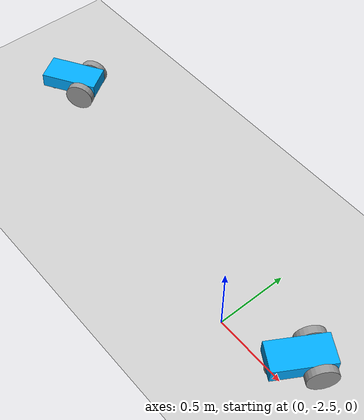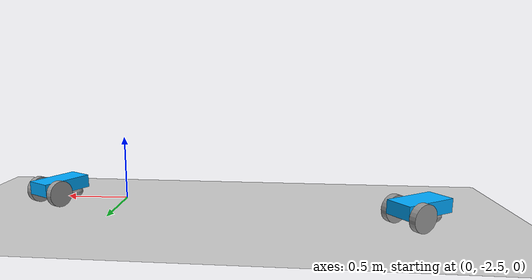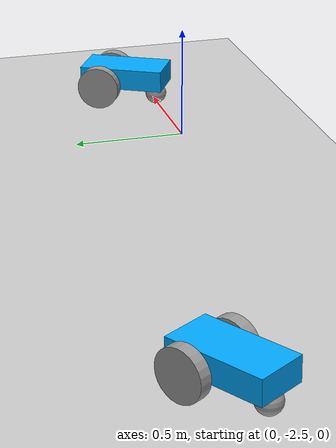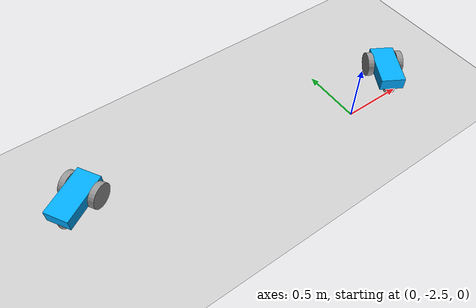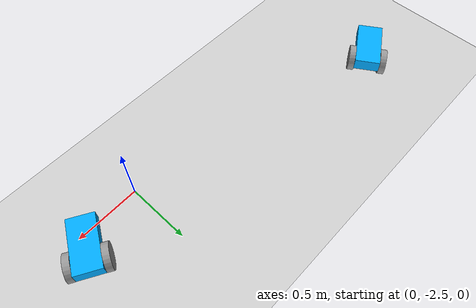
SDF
<sdf version="1.6">
 <world name="default">
  <model name="ground_plane">
   <static>1</static>
   <link name="link">
    <collision name="collision">
     <geometry><plane><normal>0 0 1</normal><size>100 100</size></plane></geometry>
     <surface><friction><ode><mu>100</mu><mu2>50</mu2></ode></friction></surface>
    </collision>
    <visual name="visual">
     <cast_shadows>0</cast_shadows>
     <geometry><plane><normal>0 0 1</normal><size>100 100</size></plane></geometry>
     <material>
      <script><uri>file://media/materials/scripts/gazebo.material</uri><name>Gazebo/Grey</name></script>
     </material>
    </visual>
   </link>
  </model>
  <model name="Robot">
   <link name="link_0">
    <inertial>
     <mass>9.4</mass>
     <inertia>
      <ixx>0.0391667</ixx>
      <ixy>0</ixy>
      <ixz>0</ixz>
      <iyy>0.133167</iyy>
      <iyz>0</iyz>
      <izz>0.156667</izz>
     </inertia>
    </inertial>
    <pose>0 0 0.05 0 -0 0</pose>
    <visual name="visual">
     <geometry><box><size>0.4 0.2 0.1</size></box></geometry>
     <material>
      <lighting>1</lighting>
      <script><uri>file://media/materials/scripts/gazebo.material</uri><name>Gazebo/Grey</name></script>
      <shader type="pixel"><normal_map>__default__</normal_map></shader>
      <ambient>0 0.667 1 1</ambient>
      <diffuse>0.7 0.7 0.7 1</diffuse>
      <specular>0.01 0.01 0.01 1</specular>
      <emissive>0 0 0 1</emissive>
     </material>
    </visual>
    <collision name="collision">
     <geometry><box><size>0.4 0.2 0.1</size></box></geometry>
     <surface>
      <friction>
       <ode><mu>1</mu><mu2>1</mu2><fdir1>0 0 0</fdir1><slip1>0</slip1><slip2>0</slip2></ode>
       <torsional>
        <coefficient>1</coefficient>
        <patch_radius>0</patch_radius>
        <surface_radius>0</surface_radius>
        <use_patch_radius>1</use_patch_radius>
        <ode><slip>0</slip></ode>
       </torsional>
      </friction>
      <bounce><restitution_coefficient>0</restitution_coefficient><threshold>1e+06</threshold></bounce>
      <contact>
       <collide_without_contact>0</collide_without_contact>
       <collide_without_contact_bitmask>1</collide_without_contact_bitmask>
       <collide_bitmask>1</collide_bitmask>
       <ode>
        <soft_cfm>0</soft_cfm>
        <soft_erp>0.2</soft_erp>
        <kp>1e+13</kp>
        <kd>1</kd>
        <max_vel>0.01</max_vel>
        <min_depth>0</min_depth>
       </ode>
       <bullet>
        <split_impulse>1</split_impulse>
        <split_impulse_penetration_threshold>-0.01</split_impulse_penetration_threshold>
        <soft_cfm>0</soft_cfm>
        <soft_erp>0.2</soft_erp>
        <kp>1e+13</kp>
        <kd>1</kd>
       </bullet>
      </contact>
     </surface>
    </collision>
   </link>
   <link name="link_0_0">
    <inertial>
     <mass>1</mass>
     <inertia><ixx>0.145833</ixx><ixy>0</ixy><ixz>0</ixz><iyy>0.145833</iyy><iyz>0</iyz><izz>0.125</izz></inertia>
    </inertial>
    <pose>0.099992 0.125029 0.014152 1.5707 -0 3.1414</pose>
    <visual name="visual">
     <geometry><cylinder><radius>0.1</radius><length>0.05</length></cylinder></geometry>
     <material>
      <lighting>1</lighting>
      <script><uri>file://media/materials/scripts/gazebo.material</uri><name>Gazebo/Grey</name></script>
      <shader type="pixel"><normal_map>__default__</normal_map></shader>
      <ambient>0 0 0 1</ambient>
      <diffuse>0.7 0.7 0.7 1</diffuse>
      <specular>0.01 0.01 0.01 1</specular>
      <emissive>0 0 0 1</emissive>
     </material>
    </visual>
    <collision name="collision">
     <geometry><cylinder><radius>0.1</radius><length>0.05</length></cylinder></geometry>
     <surface>
      <friction>
       <ode><mu>1</mu><mu2>1</mu2><fdir1>0 0 0</fdir1><slip1>0</slip1><slip2>0</slip2></ode>
       <torsional>
        <coefficient>1</coefficient>
        <patch_radius>0</patch_radius>
        <surface_radius>0</surface_radius>
        <use_patch_radius>1</use_patch_radius>
        <ode><slip>0</slip></ode>
       </torsional>
      </friction>
      <bounce><restitution_coefficient>0</restitution_coefficient><threshold>1e+06</threshold></bounce>
      <contact>
       <collide_without_contact>0</collide_without_contact>
       <collide_without_contact_bitmask>1</collide_without_contact_bitmask>
       <collide_bitmask>1</collide_bitmask>
       <ode>
        <soft_cfm>0</soft_cfm>
        <soft_erp>0.2</soft_erp>
        <kp>1e+13</kp>
        <kd>1</kd>
        <max_vel>0.01</max_vel>
        <min_depth>0</min_depth>
       </ode>
       <bullet>
        <split_impulse>1</split_impulse>
        <split_impulse_penetration_threshold>-0.01</split_impulse_penetration_threshold>
        <soft_cfm>0</soft_cfm>
        <soft_erp>0.2</soft_erp>
        <kp>1e+13</kp>
        <kd>1</kd>
       </bullet>
      </contact>
     </surface>
    </collision>
   </link>
   <link name="link_0_0_clone">
    <inertial>
     <mass>1</mass>
     <inertia><ixx>0.145833</ixx><ixy>0</ixy><ixz>0</ixz><iyy>0.145833</iyy><iyz>0</iyz><izz>0.125</izz></inertia>
    </inertial>
    <pose>0.1 -0.12501 0.014152 1.5707 -0 0</pose>
    <visual name="visual_0">
     <geometry><cylinder><radius>0.1</radius><length>0.05</length></cylinder></geometry>
     <material>
      <lighting>1</lighting>
      <script><uri>file://media/materials/scripts/gazebo.material</uri><name>Gazebo/Grey</name></script>
      <shader type="pixel"><normal_map>__default__</normal_map></shader>
      <ambient>0 0 0 1</ambient>
      <diffuse>0.7 0.7 0.7 1</diffuse>
      <specular>0.01 0.01 0.01 1</specular>
      <emissive>0 0 0 1</emissive>
     </material>
    </visual>
    <collision name="collision">
     <geometry><cylinder><radius>0.1</radius><length>0.05</length></cylinder></geometry>
     <surface>
      <friction>
       <ode><mu>1</mu><mu2>1</mu2><fdir1>0 0 0</fdir1><slip1>0</slip1><slip2>0</slip2></ode>
       <torsional>
        <coefficient>1</coefficient>
        <patch_radius>0</patch_radius>
        <surface_radius>0</surface_radius>
        <use_patch_radius>1</use_patch_radius>
        <ode><slip>0</slip></ode>
       </torsional>
      </friction>
      <bounce><restitution_coefficient>0</restitution_coefficient><threshold>1e+06</threshold></bounce>
      <contact>
       <collide_without_contact>0</collide_without_contact>
       <collide_without_contact_bitmask>1</collide_without_contact_bitmask>
       <collide_bitmask>1</collide_bitmask>
       <ode>
        <soft_cfm>0</soft_cfm>
        <soft_erp>0.2</soft_erp>
        <kp>1e+13</kp>
        <kd>1</kd>
        <max_vel>0.01</max_vel>
        <min_depth>0</min_depth>
       </ode>
       <bullet>
        <split_impulse>1</split_impulse>
        <split_impulse_penetration_threshold>-0.01</split_impulse_penetration_threshold>
        <soft_cfm>0</soft_cfm>
        <soft_erp>0.2</soft_erp>
        <kp>1e+13</kp>
        <kd>1</kd>
       </bullet>
      </contact>
     </surface>
    </collision>
   </link>
   <link name="link_1">
    <inertial>
     <mass>0.615229</mass>
     <inertia>
      <ixx>0.00061523</ixx>
      <ixy>0</ixy>
      <ixz>0</ixz>
      <iyy>0.00061523</iyy>
      <iyz>0</iyz>
      <izz>0.00061523</izz>
     </inertia>
    </inertial>
    <pose>-0.15 -0 -0.04 0 -0 0</pose>
    <visual name="visual">
     <geometry><sphere><radius>0.05</radius></sphere></geometry>
     <material>
      <lighting>1</lighting>
      <script><uri>file://media/materials/scripts/gazebo.material</uri><name>Gazebo/Grey</name></script>
      <shader type="pixel"><normal_map>__default__</normal_map></shader>
      <ambient>0 0 0 1</ambient>
      <diffuse>0.7 0.7 0.7 1</diffuse>
      <specular>0.01 0.01 0.01 1</specular>
      <emissive>0 0 0 1</emissive>
     </material>
    </visual>
    <collision name="collision">
     <geometry><sphere><radius>0.05</radius></sphere></geometry>
     <surface>
      <friction>
       <ode><mu>0</mu><mu2>0</mu2><fdir1>0 0 0</fdir1><slip1>1</slip1><slip2>1</slip2></ode>
       <torsional>
        <coefficient>1</coefficient>
        <patch_radius>0</patch_radius>
        <surface_radius>0</surface_radius>
        <use_patch_radius>1</use_patch_radius>
        <ode><slip>0</slip></ode>
       </torsional>
      </friction>
      <bounce><restitution_coefficient>0</restitution_coefficient><threshold>1e+06</threshold></bounce>
      <contact>
       <collide_without_contact>0</collide_without_contact>
       <collide_without_contact_bitmask>1</collide_without_contact_bitmask>
       <collide_bitmask>1</collide_bitmask>
       <ode>
        <soft_cfm>0</soft_cfm>
        <soft_erp>0.2</soft_erp>
        <kp>1e+13</kp>
        <kd>1</kd>
        <max_vel>0.01</max_vel>
        <min_depth>0</min_depth>
       </ode>
       <bullet>
        <split_impulse>1</split_impulse>
        <split_impulse_penetration_threshold>-0.01</split_impulse_penetration_threshold>
        <soft_cfm>0</soft_cfm>
        <soft_erp>0.2</soft_erp>
        <kp>1e+13</kp>
        <kd>1</kd>
       </bullet>
      </contact>
     </surface>
    </collision>
   </link>
   <joint name="link_0_JOINT_1" type="revolute">
    <parent>link_0</parent>
    <child>link_0_0</child>
    <axis>
     <xyz>0 0 1</xyz>
     <use_parent_model_frame>0</use_parent_model_frame>
     <limit>
      <lower>-1.79769e+308</lower>
      <upper>1.79769e+308</upper>
      <effort>-1</effort>
      <velocity>-1</velocity>
     </limit>
     <dynamics>
      <spring_reference>0</spring_reference>
      <spring_stiffness>0</spring_stiffness>
      <damping>0</damping>
     </dynamics>
    </axis>
    <physics>
     <ode><limit><cfm>0</cfm><erp>0.2</erp></limit><suspension><cfm>0</cfm><erp>0.2</erp></suspension></ode>
    </physics>
   </joint>
   <joint name="link_0_JOINT_2" type="revolute">
    <parent>link_0</parent>
    <child>link_0_0_clone</child>
    <axis>
     <xyz>0 0 1</xyz>
     <use_parent_model_frame>0</use_parent_model_frame>
     <limit>
      <lower>-1.79769e+308</lower>
      <upper>1.79769e+308</upper>
      <effort>-1</effort>
      <velocity>-1</velocity>
     </limit>
     <dynamics>
      <spring_reference>0</spring_reference>
      <spring_stiffness>0</spring_stiffness>
      <damping>0</damping>
     </dynamics>
    </axis>
    <physics>
     <ode><limit><cfm>0</cfm><erp>0.2</erp></limit><suspension><cfm>0</cfm><erp>0.2</erp></suspension></ode>
    </physics>
   </joint>
   <joint name="link_0_JOINT_3" type="ball">
    <parent>link_0</parent>
    <child>link_1</child>
    <physics>
     <ode><limit><cfm>0</cfm><erp>0.2</erp></limit><suspension><cfm>0</cfm><erp>0.2</erp></suspension></ode>
    </physics>
   </joint>
   <static>0</static>
   <pose>-2.18601 -2.02462 0.087509 2e-06 0.016572 0.5592</pose>
  </model>
  <model name="Robot_0">
   <link name="link_0">
    <inertial>
     <mass>9.4</mass>
     <inertia>
      <ixx>0.0391667</ixx>
      <ixy>0</ixy>
      <ixz>0</ixz>
      <iyy>0.133167</iyy>
      <iyz>0</iyz>
      <izz>0.156667</izz>
     </inertia>
    </inertial>
    <pose>0 0 0.05 0 -0 0</pose>
    <visual name="visual">
     <geometry><box><size>0.4 0.2 0.1</size></box></geometry>
     <material>
      <lighting>1</lighting>
      <script><uri>file://media/materials/scripts/gazebo.material</uri><name>Gazebo/Grey</name></script>
      <shader type="pixel"><normal_map>__default__</normal_map></shader>
      <ambient>0 0.667 1 1</ambient>
      <diffuse>0.7 0.7 0.7 1</diffuse>
      <specular>0.01 0.01 0.01 1</specular>
      <emissive>0 0 0 1</emissive>
     </material>
    </visual>
    <collision name="collision">
     <geometry><box><size>0.4 0.2 0.1</size></box></geometry>
     <surface>
      <friction>
       <ode><mu>1</mu><mu2>1</mu2><fdir1>0 0 0</fdir1><slip1>0</slip1><slip2>0</slip2></ode>
       <torsional>
        <coefficient>1</coefficient>
        <patch_radius>0</patch_radius>
        <surface_radius>0</surface_radius>
        <use_patch_radius>1</use_patch_radius>
        <ode><slip>0</slip></ode>
       </torsional>
      </friction>
      <bounce><restitution_coefficient>0</restitution_coefficient><threshold>1e+06</threshold></bounce>
      <contact>
       <collide_without_contact>0</collide_without_contact>
       <collide_without_contact_bitmask>1</collide_without_contact_bitmask>
       <collide_bitmask>1</collide_bitmask>
       <ode>
        <soft_cfm>0</soft_cfm>
        <soft_erp>0.2</soft_erp>
        <kp>1e+13</kp>
        <kd>1</kd>
        <max_vel>0.01</max_vel>
        <min_depth>0</min_depth>
       </ode>
       <bullet>
        <split_impulse>1</split_impulse>
        <split_impulse_penetration_threshold>-0.01</split_impulse_penetration_threshold>
        <soft_cfm>0</soft_cfm>
        <soft_erp>0.2</soft_erp>
        <kp>1e+13</kp>
        <kd>1</kd>
       </bullet>
      </contact>
     </surface>
    </collision>
   </link>
   <link name="link_0_0">
    <inertial>
     <mass>1</mass>
     <inertia><ixx>0.145833</ixx><ixy>0</ixy><ixz>0</ixz><iyy>0.145833</iyy><iyz>0</iyz><izz>0.125</izz></inertia>
    </inertial>
    <pose>0.099992 0.125029 0.014152 1.5707 -0 3.1414</pose>
    <visual name="visual">
     <geometry><cylinder><radius>0.1</radius><length>0.05</length></cylinder></geometry>
     <material>
      <lighting>1</lighting>
      <script><uri>file://media/materials/scripts/gazebo.material</uri><name>Gazebo/Grey</name></script>
      <shader type="pixel"><normal_map>__default__</normal_map></shader>
      <ambient>0 0 0 1</ambient>
      <diffuse>0.7 0.7 0.7 1</diffuse>
      <specular>0.01 0.01 0.01 1</specular>
      <emissive>0 0 0 1</emissive>
     </material>
    </visual>
    <collision name="collision">
     <geometry><cylinder><radius>0.1</radius><length>0.05</length></cylinder></geometry>
     <surface>
      <friction>
       <ode><mu>1</mu><mu2>1</mu2><fdir1>0 0 0</fdir1><slip1>0</slip1><slip2>0</slip2></ode>
       <torsional>
        <coefficient>1</coefficient>
        <patch_radius>0</patch_radius>
        <surface_radius>0</surface_radius>
        <use_patch_radius>1</use_patch_radius>
        <ode><slip>0</slip></ode>
       </torsional>
      </friction>
      <bounce><restitution_coefficient>0</restitution_coefficient><threshold>1e+06</threshold></bounce>
      <contact>
       <collide_without_contact>0</collide_without_contact>
       <collide_without_contact_bitmask>1</collide_without_contact_bitmask>
       <collide_bitmask>1</collide_bitmask>
       <ode>
        <soft_cfm>0</soft_cfm>
        <soft_erp>0.2</soft_erp>
        <kp>1e+13</kp>
        <kd>1</kd>
        <max_vel>0.01</max_vel>
        <min_depth>0</min_depth>
       </ode>
       <bullet>
        <split_impulse>1</split_impulse>
        <split_impulse_penetration_threshold>-0.01</split_impulse_penetration_threshold>
        <soft_cfm>0</soft_cfm>
        <soft_erp>0.2</soft_erp>
        <kp>1e+13</kp>
        <kd>1</kd>
       </bullet>
      </contact>
     </surface>
    </collision>
   </link>
   <link name="link_0_0_clone">
    <inertial>
     <mass>1</mass>
     <inertia><ixx>0.145833</ixx><ixy>0</ixy><ixz>0</ixz><iyy>0.145833</iyy><iyz>0</iyz><izz>0.125</izz></inertia>
    </inertial>
    <pose>0.1 -0.12501 0.014152 1.5707 -0 0</pose>
    <visual name="visual_0">
     <geometry><cylinder><radius>0.1</radius><length>0.05</length></cylinder></geometry>
     <material>
      <lighting>1</lighting>
      <script><uri>file://media/materials/scripts/gazebo.material</uri><name>Gazebo/Grey</name></script>
      <shader type="pixel"><normal_map>__default__</normal_map></shader>
      <ambient>0 0 0 1</ambient>
      <diffuse>0.7 0.7 0.7 1</diffuse>
      <specular>0.01 0.01 0.01 1</specular>
      <emissive>0 0 0 1</emissive>
     </material>
    </visual>
    <collision name="collision">
     <geometry><cylinder><radius>0.1</radius><length>0.05</length></cylinder></geometry>
     <surface>
      <friction>
       <ode><mu>1</mu><mu2>1</mu2><fdir1>0 0 0</fdir1><slip1>0</slip1><slip2>0</slip2></ode>
       <torsional>
        <coefficient>1</coefficient>
        <patch_radius>0</patch_radius>
        <surface_radius>0</surface_radius>
        <use_patch_radius>1</use_patch_radius>
        <ode><slip>0</slip></ode>
       </torsional>
      </friction>
      <bounce><restitution_coefficient>0</restitution_coefficient><threshold>1e+06</threshold></bounce>
      <contact>
       <collide_without_contact>0</collide_without_contact>
       <collide_without_contact_bitmask>1</collide_without_contact_bitmask>
       <collide_bitmask>1</collide_bitmask>
       <ode>
        <soft_cfm>0</soft_cfm>
        <soft_erp>0.2</soft_erp>
        <kp>1e+13</kp>
        <kd>1</kd>
        <max_vel>0.01</max_vel>
        <min_depth>0</min_depth>
       </ode>
       <bullet>
        <split_impulse>1</split_impulse>
        <split_impulse_penetration_threshold>-0.01</split_impulse_penetration_threshold>
        <soft_cfm>0</soft_cfm>
        <soft_erp>0.2</soft_erp>
        <kp>1e+13</kp>
        <kd>1</kd>
       </bullet>
      </contact>
     </surface>
    </collision>
   </link>
   <link name="link_1">
    <inertial>
     <mass>0.615229</mass>
     <inertia>
      <ixx>0.00061523</ixx>
      <ixy>0</ixy>
      <ixz>0</ixz>
      <iyy>0.00061523</iyy>
      <iyz>0</iyz>
      <izz>0.00061523</izz>
     </inertia>
    </inertial>
    <pose>-0.15 -0 -0.04 0 -0 0</pose>
    <visual name="visual">
     <geometry><sphere><radius>0.05</radius></sphere></geometry>
     <material>
      <lighting>1</lighting>
      <script><uri>file://media/materials/scripts/gazebo.material</uri><name>Gazebo/Grey</name></script>
      <shader type="pixel"><normal_map>__default__</normal_map></shader>
      <ambient>0 0 0 1</ambient>
      <diffuse>0.7 0.7 0.7 1</diffuse>
      <specular>0.01 0.01 0.01 1</specular>
      <emissive>0 0 0 1</emissive>
     </material>
    </visual>
    <collision name="collision">
     <geometry><sphere><radius>0.05</radius></sphere></geometry>
     <surface>
      <friction>
       <ode><mu>0</mu><mu2>0</mu2><fdir1>0 0 0</fdir1><slip1>1</slip1><slip2>1</slip2></ode>
       <torsional>
        <coefficient>1</coefficient>
        <patch_radius>0</patch_radius>
        <surface_radius>0</surface_radius>
        <use_patch_radius>1</use_patch_radius>
        <ode><slip>0</slip></ode>
       </torsional>
      </friction>
      <bounce><restitution_coefficient>0</restitution_coefficient><threshold>1e+06</threshold></bounce>
      <contact>
       <collide_without_contact>0</collide_without_contact>
       <collide_without_contact_bitmask>1</collide_without_contact_bitmask>
       <collide_bitmask>1</collide_bitmask>
       <ode>
        <soft_cfm>0</soft_cfm>
        <soft_erp>0.2</soft_erp>
        <kp>1e+13</kp>
        <kd>1</kd>
        <max_vel>0.01</max_vel>
        <min_depth>0</min_depth>
       </ode>
       <bullet>
        <split_impulse>1</split_impulse>
        <split_impulse_penetration_threshold>-0.01</split_impulse_penetration_threshold>
        <soft_cfm>0</soft_cfm>
        <soft_erp>0.2</soft_erp>
        <kp>1e+13</kp>
        <kd>1</kd>
       </bullet>
      </contact>
     </surface>
    </collision>
   </link>
   <joint name="link_0_JOINT_1" type="revolute">
    <parent>link_0</parent>
    <child>link_0_0</child>
    <axis>
     <xyz>0 0 1</xyz>
     <use_parent_model_frame>0</use_parent_model_frame>
     <limit>
      <lower>-1.79769e+308</lower>
      <upper>1.79769e+308</upper>
      <effort>-1</effort>
      <velocity>-1</velocity>
     </limit>
     <dynamics>
      <spring_reference>0</spring_reference>
      <spring_stiffness>0</spring_stiffness>
      <damping>0</damping>
     </dynamics>
    </axis>
    <physics>
     <ode><limit><cfm>0</cfm><erp>0.2</erp></limit><suspension><cfm>0</cfm><erp>0.2</erp></suspension></ode>
    </physics>
   </joint>
   <joint name="link_0_JOINT_2" type="revolute">
    <parent>link_0</parent>
    <child>link_0_0_clone</child>
    <axis>
     <xyz>0 0 1</xyz>
     <use_parent_model_frame>0</use_parent_model_frame>
     <limit>
      <lower>-1.79769e+308</lower>
      <upper>1.79769e+308</upper>
      <effort>-1</effort>
      <velocity>-1</velocity>
     </limit>
     <dynamics>
      <spring_reference>0</spring_reference>
      <spring_stiffness>0</spring_stiffness>
      <damping>0</damping>
     </dynamics>
    </axis>
    <physics>
     <ode><limit><cfm>0</cfm><erp>0.2</erp></limit><suspension><cfm>0</cfm><erp>0.2</erp></suspension></ode>
    </physics>
   </joint>
   <joint name="link_0_JOINT_3" type="ball">
    <parent>link_0</parent>
    <child>link_1</child>
    <physics>
     <ode><limit><cfm>0</cfm><erp>0.2</erp></limit><suspension><cfm>0</cfm><erp>0.2</erp></suspension></ode>
    </physics>
   </joint>
   <static>0</static>
   <pose>0.503015 -2.36302 0.087509 -5e-06 0.016572 1.04517</pose>
  </model>
 </world>
</sdf>
